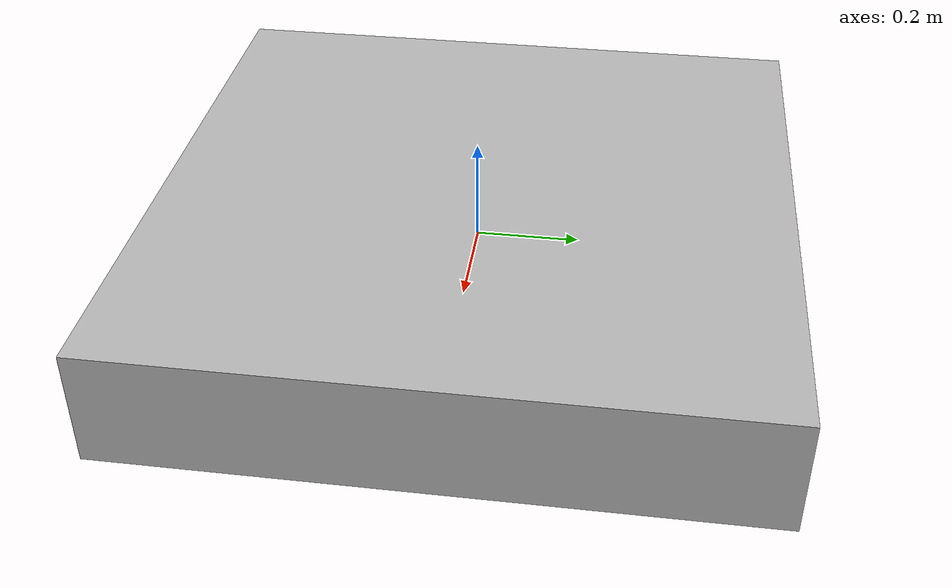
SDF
<?xml version="1.0" ?>
<sdf version="1.5">
  <model name="drywall_panel_stack_static">
    <static>true</static>
    <link name="link">
      <pose>0 0 0 0 0 0</pose>
      <collision name="collision">
        <geometry>
          <box>
            <size>1.2192 1.2192 0.2286</size> <!-- Drywall is typically stacked no higher than 9" ~ .2286m -->
          </box>
        </geometry>
        <max_contacts>10</max_contacts>
        <surface>
          <contact>
            <ode>
              <max_vel>0</max_vel>
              <min_depth>0.001</min_depth>
            </ode>
          </contact>
          <bounce/>
          <friction>
            <torsional>
              <ode/>
            </torsional>
            <ode/>
          </friction>
        </surface>
      </collision>
      <visual name="visual">
        <cast_shadows>false</cast_shadows>
        <geometry>
          <box>
            <size>1.2192 1.2192 0.2286</size>
          </box>
        </geometry>
        <material>
          <!-- Gray-Green = RGB (94, 113, 106) -->
          <ambient>0.3671875 0.44140625 0.4140625 1</ambient>
          <diffuse>0.7 0.7 0.7 1</diffuse>
          <specular>0 0 0 0</specular>
          <emissive>0.1 0.1 0.1 1</emissive>
        </material>
        <self_collide>0</self_collide>
      </visual>
      <inertial>
        <pose frame=''>0 0 0 0 -0 0</pose>
        <inertia>
          <ixx>1</ixx>
          <ixy>0</ixy>
          <ixz>0</ixz>
          <iyy>1</iyy>
          <iyz>0</iyz>
          <izz>1</izz>
        </inertia>
        <mass>1</mass>
      </inertial>
      <enable_wind>0</enable_wind>
      <kinematic>0</kinematic>
    </link>
  </model>
</sdf>
